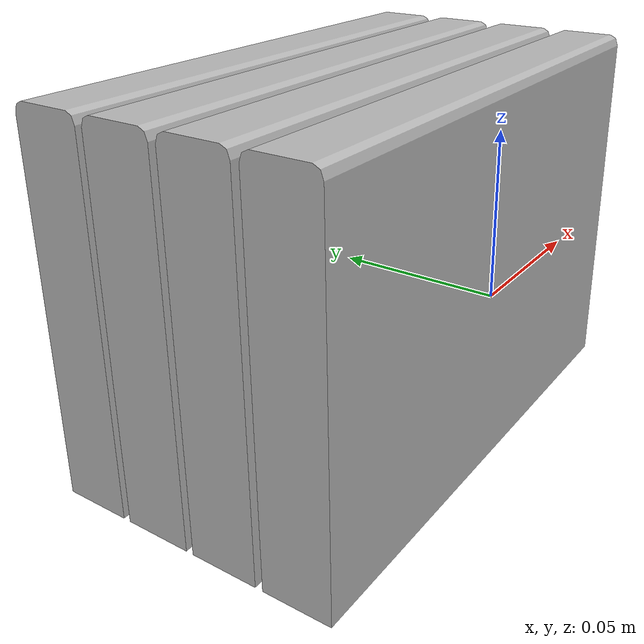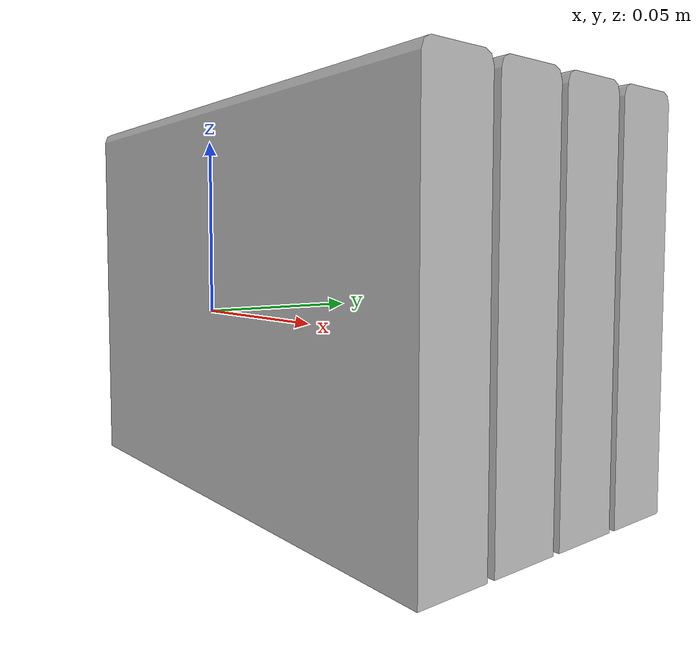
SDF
<?xml version="1.0" ?>
<sdf version="1.4">
  <model name="shelf3_book3_h3">
    <link name="body">
      <pose>0 0 0 0 0 0</pose>
      <inertial>
        <pose>   0.003643   0.047829   0.001435 0 0 0</pose>
        <mass>0.5</mass>
        <inertia>
          <ixx>0.01</ixx>
          <ixy>0</ixy>
          <ixz>0</ixz>
          <iyy>0.01</iyy>
          <iyz>0</iyz>
          <izz>0.01</izz>
        </inertia>
      </inertial>
      <collision name="collision">
        <geometry>
          <mesh>
            <uri>model://bookshelf/shelf3_items/book3_h3/book3_h3.dae</uri>
          </mesh>
        </geometry>
      </collision>
      <visual name="visual">
        <geometry>
          <mesh>
            <uri>model://bookshelf/shelf3_items/book3_h3/book3_h3.dae</uri>
          </mesh>
        </geometry>
      </visual>
    </link>
  </model>
</sdf>
